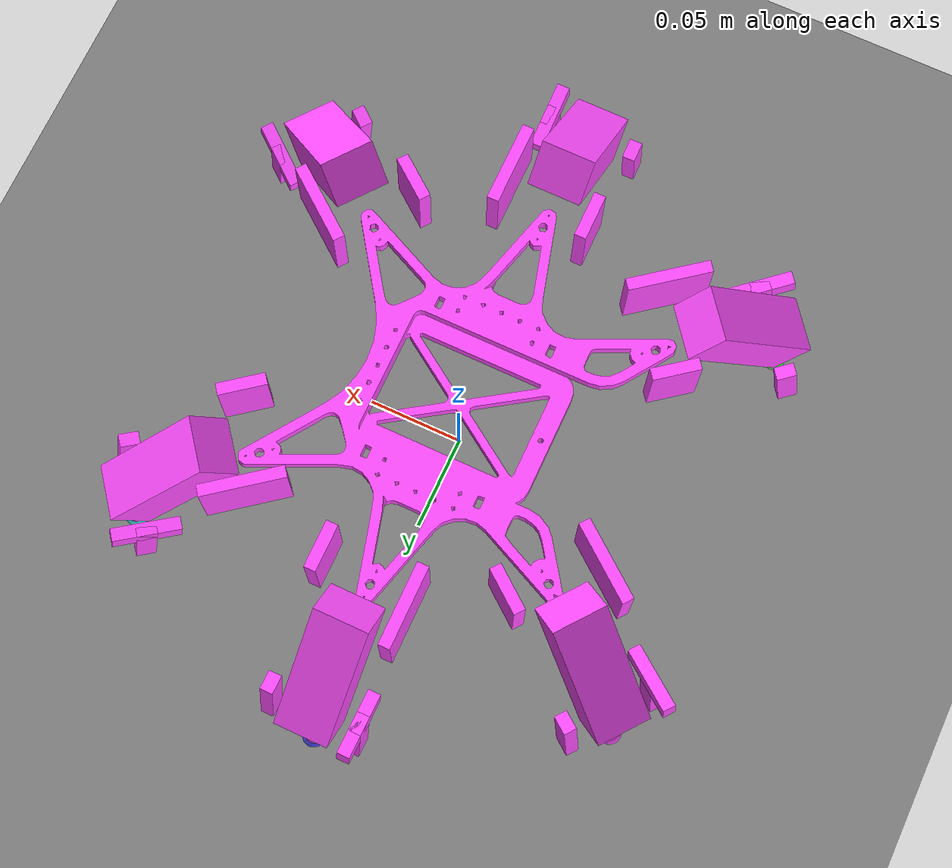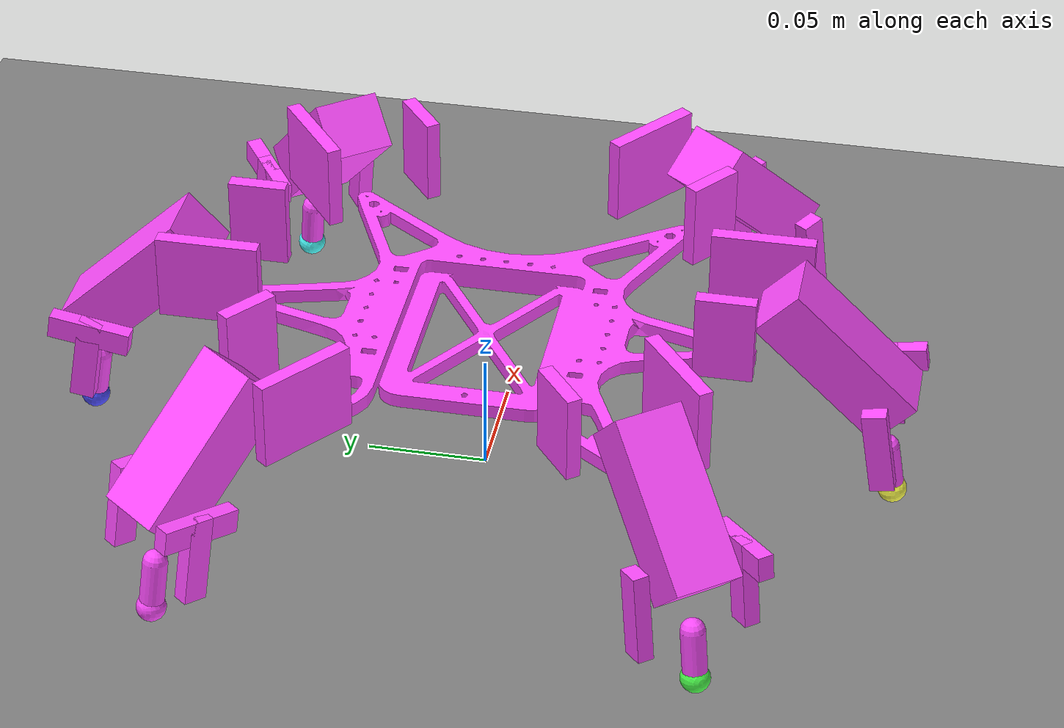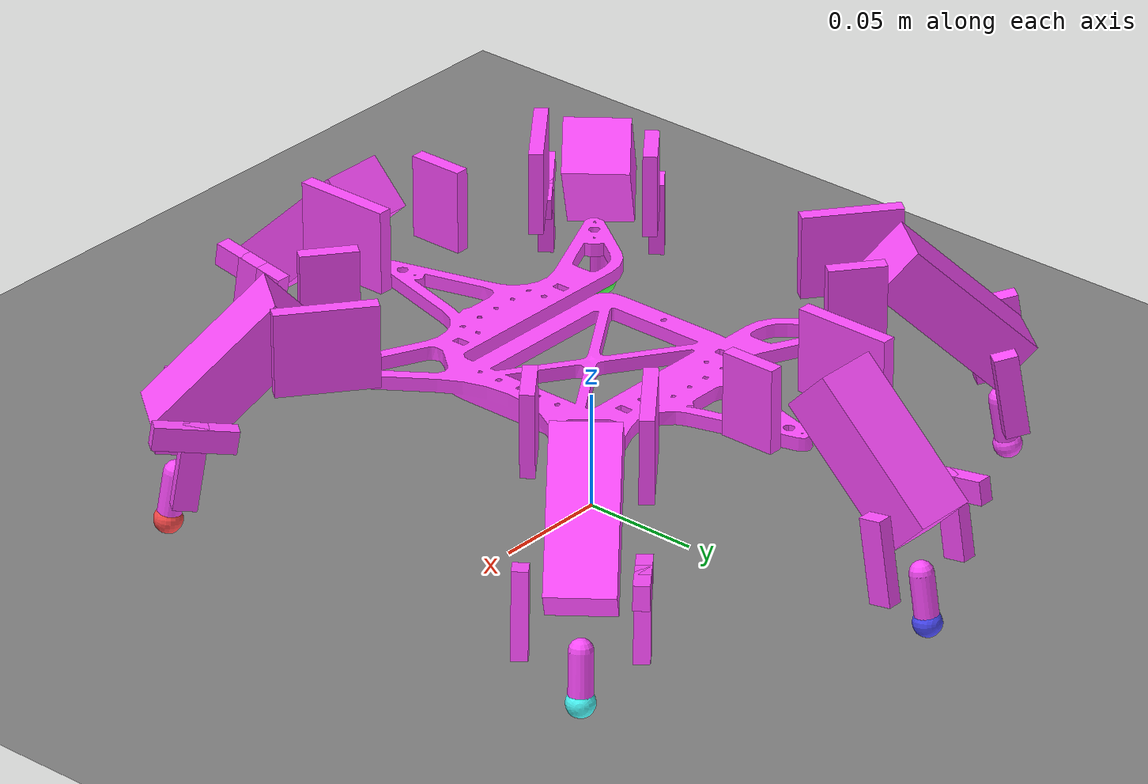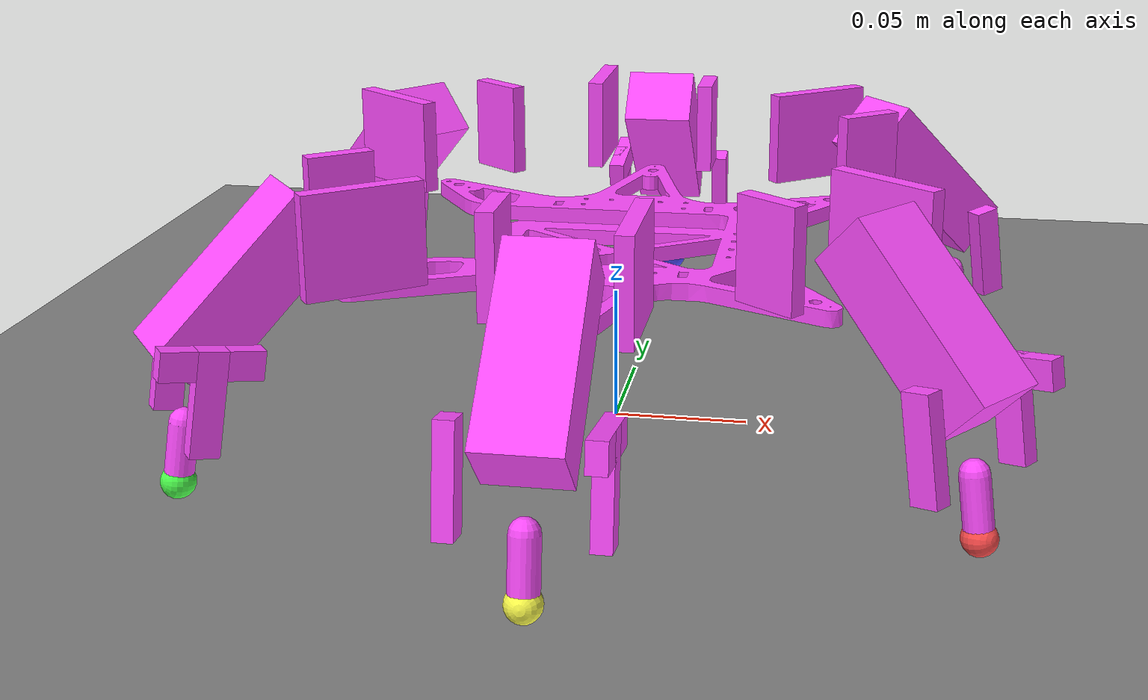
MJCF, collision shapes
<mujoco model="hexy-v2.2">
    <include file="scenes/scene.xml"/>
    <include file="assets/dep-v2.2.xml"/>
    <compiler meshdir="meshes/"/>
    <worldbody>
        <body name="hexy_frame" pos="0 0 0">
            <camera name="track" mode="trackcom" pos="0 -1 0.25" xyaxes="1 0 0 0 0 1"/>
            <joint name="Tx" pos="0 0 0" axis="1 0 0" limited="true" type="slide" range="-10 100"/>
            <joint name="Ty" pos="0 0 0" axis="0 1 0" limited="true" type="slide" range="-10 100"/>
            <joint name="Tz" pos="0 0 0" axis="0 0 1" limited="true" type="slide" range="-10 100"/>
            <joint name="Rx" pos="0 0 0" axis="1 0 0" limited="true" range="-20 20"/>
            <joint name="Ry" pos="0 0 0" axis="0 1 0" limited="true" range="-20 20"/>
            <joint name="Rz" pos="0 0 0" axis="0 0 1" limited="true" range="-20 20"/>
            <include file="assets/chain-v2.2.xml"/>
        </body>
    </worldbody>
</mujoco>

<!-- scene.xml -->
<mujocoinclude>
  <asset>
    <texture name="texplane" type="2d" builtin="checker" rgb1="1 1 1" rgb2="0 0 0" width="512" height="512"/>
    <material name="MatPlane" reflectance="0" texture="texplane" texrepeat="1 1" texuniform="true"/>
  </asset>
  <worldbody>
    <geom name="floor" pos="0 0 0" size="30 5 .1" conaffinity="1" contype="1" type="plane" material="MatPlane" condim="4"/>
    <site name="xaxis" pos=".5 0 0" size=".005 .5" type="capsule" rgba="1 0 0 .25" euler="0 1.57 0" group="3"/>
    <site name="yaxis" pos="0 .5 0" size=".005 .5" type="capsule" rgba="0 1 0 .25" euler="1.57 0 0" group="3"/>
  </worldbody>
</mujocoinclude>

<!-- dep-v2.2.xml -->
<mujocoinclude>
    <compiler angle="radian"/>
    <!--option timestep="0.002"/-->
    <option timestep="0.004"/>
    <size njmax="2000" nconmax="500"/>
    <default>
        <default class="hexy">
            <joint limited="true" range="-1.5 1.5" damping="0.1" armature="0.001"/>
            <geom contype="1" conaffinity="1" condim="4" group="1" margin="0.001"/>
            <position ctrllimited="true" ctrlrange="-1.5 1.5" forcelimited="true" forcerange="-0.5 0.5" kp="1" gear="1"/>
            <default class="belly">
                <geom contype="0" conaffinity="0" group="1" type="mesh" rgba="1 1 1 1" mass="0"/>
            </default>
            <default class="thigh">
                <geom mesh="Thigh" contype="0" conaffinity="0" group="1" type="mesh" rgba="0.3 0.3 1 1" mass="0"/>
            </default>
            <default class="shin">
                <joint range="-0.75 2.25"/>
                <position ctrlrange="-0.75 2.25"/>
                <geom mesh="Shin" contype="0" conaffinity="0" group="1" type="mesh" rgba="0.3 1 0.3 1" mass="0"/>
            </default>
            <default class="foot">
                <joint range="-2.1 0.9"/>
                <position ctrlrange="-2.1 0.9"/>
                <geom mesh="Foot" contype="0" conaffinity="0" group="1" type="mesh" rgba="1 0.3 0.3 1" mass="0"/>
            </default>
            <default class="collision">
                <geom contype="1" conaffinity="1" group="4" rgba="1 0.3 1 0.5"/>
            </default>
            <site pos="0.049 0 0" group="1" type="sphere" size="0.006"/>
        </default>
    </default>
    <asset>
        <mesh name="Bulk" file="main_body.STL"/>
        <mesh name="BulkCollision" file="base_link_2500_face.stl"/>
        <mesh name="Thigh" file="link1_1.STL"/>
        <mesh name="Shin" file="link1_2.STL"/>
        <mesh name="Foot" file="link1_3.STL"/>
    </asset>
    <actuator>
        <position class="hexy" name="FR1" joint="FR1"/>
        <position class="shin" name="FR2" joint="FR2"/>
        <position class="foot" name="FR3" joint="FR3"/>
        <position class="hexy" name="MR1" joint="MR1"/>
        <position class="shin" name="MR2" joint="MR2"/>
        <position class="foot" name="MR3" joint="MR3"/>
        <position class="hexy" name="BR1" joint="BR1"/>
        <position class="shin" name="BR2" joint="BR2"/>
        <position class="foot" name="BR3" joint="BR3"/>
        <position class="hexy" name="FL1" joint="FL1"/>
        <position class="shin" name="FL2" joint="FL2"/>
        <position class="foot" name="FL3" joint="FL3"/>
        <position class="hexy" name="ML1" joint="ML1"/>
        <position class="shin" name="ML2" joint="ML2"/>
        <position class="foot" name="ML3" joint="ML3"/>
        <position class="hexy" name="BL1" joint="BL1"/>
        <position class="shin" name="BL2" joint="BL2"/>
        <position class="foot" name="BL3" joint="BL3"/>
    </actuator>
</mujocoinclude>

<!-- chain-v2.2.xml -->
<mujocoinclude>
    <body childclass="hexy" name="Hexy" pos="0 0 0.06" euler="-1.570796 0 -1.570796">
        <!-- Torso 0.29131 gram -->
        <geom class="belly" name="Torso" mesh="Bulk"/>
        <geom class="collision" type="mesh" mesh="BulkCollision" euler="1.570796 1.570796 0"/>
        <inertial pos="0.038378 0.011283 -2.4509e-05" quat="1 -0.000159067 -3.52117e-06 -8.80146e-05" mass="0.39131" diaginertia="0.00058735 0.00035464 0.00024547" />
        <!-- Front Right Leg -->
        <body name="FrontRightThigh" pos="0.0133 0.076604 -0.064279" quat="0.67 -0.23 0.67 -0.23">
            <inertial pos="0.000650729 0.00390237 0.0206345" quat="0.565059 0.407617 0.353554 0.624144" mass="0.0328104" diaginertia="4.10825e-06 4.04383e-06 3.93464e-06" />
            <joint name="FR1" pos="0 0 0" axis="0 0 1"/>
            <geom class="thigh"/>
            <geom class="collision" type="box" pos="0.023 0 0.02" size="0.003 0.012 0.018"/>
            <geom class="collision" type="box" pos="-0.023 0.009 0.02" size="0.003 0.021 0.018"/>
            <body name="FrontRightShin" pos="0 0.026 0.02015" quat="0.4 1 0.4 1">
                <inertial pos="7.00279e-05 -0.0244376 -0.00118476" quat="0.707108 0.707106 0 0" mass="0.0331424" diaginertia="6.21248e-06 5.7647e-06 2.30821e-06" />
                <joint name="FR2" class="shin" pos="0 0 0" axis="0 0 1"/>
                <geom class="shin"/>
                <geom class="collision" type="box" pos="0 -0.0245 0" size="0.012 0.0345 0.014"/>
                <body name="FrontRightFoot" pos="0 -0.04887 0" quat="0.5 -0.5 1 -1">
                    <inertial pos="0.0170134 0.00029768 1.52199e-09" quat="3.18245e-06 0.707107 -3.68379e-07 0.707106" mass="0.0165654" diaginertia="1.76103e-06 1.37282e-06 1.01637e-06" />
                    <joint name="FR3" class="foot" pos="0 0 0" axis="0 1 0"/>
                    <geom class="foot"/>
                    <geom class="collision" type="box" pos="0.013 0.023 0" size="0.018 0.0033 0.005"/>
                    <geom class="collision" type="box" pos="0.013 -0.023 0" size="0.018 0.0033 0.005"/>
                    <geom class="collision" type="box" pos="0 0.023 0" size="0.005 0.0033 0.017"/>
                    <geom class="collision" euler="0 -1.571 0" type="capsule" pos="0.038 0 0" size="0.005 0.01"/>
                    <site name="FRfoot" rgba="1 0.3 0.3 1"/>
                </body>
            </body>
        </body>
        <!-- Middle Right Leg -->
        <body name="MiddleRightThigh" pos="0.0133 0 -0.1" quat="0.5 -0.5 0.5 -0.5">
            <inertial pos="0.000650726 0.00390238 0.0206345" quat="0.565059 0.407618 0.353555 0.624142" mass="0.0328105" diaginertia="4.10825e-06 4.04383e-06 3.93464e-06" />
            <joint name="MR1" pos="0 0 0" axis="0 0 1"/>
            <geom class="thigh"/>
            <geom class="collision" type="box" pos="0.023 0 0.02" size="0.003 0.012 0.018"/>
            <geom class="collision" type="box" pos="-0.023 0.009 0.02" size="0.003 0.021 0.018"/>
            <body name="MiddleRightShin" pos="0 0.026 0.02015" quat="0.4 1 0.4 1">
                <inertial pos="6.99965e-05 -0.0244375 -0.00118476" quat="0.707107 0.707107 -8.09775e-06 8.09775e-06" mass="0.0331424" diaginertia="6.21247e-06 5.7647e-06 2.30821e-06" />
                <joint name="MR2" class="shin" pos="0 0 0" axis="0 0 1"/>
                <geom class="shin"/>
                <geom class="collision" type="box" pos="0 -0.0245 0" size="0.012 0.0345 0.014"/>
                <body name="MiddleRightFoot" pos="0.00014 -0.04887 0" quat="0.5 -0.5 1 -1">
                    <inertial pos="0.0170134 0.00029772 -2.57158e-08" quat="4.56968e-06 0.707107 1.45044e-07 0.707107" mass="0.0165654" diaginertia="1.76103e-06 1.37282e-06 1.01637e-06" />
                    <joint name="MR3" class="foot" pos="0 0 0" axis="0 1 0"/>
                    <geom class="foot"/>
                    <geom class="collision" type="box" pos="0.013 0.023 0" size="0.018 0.0033 0.005"/>
                    <geom class="collision" type="box" pos="0.013 -0.023 0" size="0.018 0.0033 0.005"/>
                    <geom class="collision" type="box" pos="0 0.023 0" size="0.005 0.0033 0.017"/>
                    <geom class="collision" euler="0 -1.571 0" type="capsule" pos="0.038 0 0" size="0.005 0.01"/>
                    <site name="MRfoot" rgba="1 1 0.3 1"/>
                </body>
            </body>
        </body>
        <!-- Back Right Leg -->
        <body name="BackRightThigh" pos="0.0133 -0.0766044 -0.0642788" quat="0.23 -0.67 0.23 -0.67">
            <inertial pos="0.000650732 0.00390238 0.0206345" quat="0.56506 0.40762 0.353558 0.62414" mass="0.0328105" diaginertia="4.10825e-06 4.04383e-06 3.93464e-06" />
            <joint name="BR1" pos="0 0 0" axis="0 0 1"/>
            <geom class="thigh"/>
            <geom class="collision" type="box" pos="0.023 0 0.02" size="0.003 0.012 0.018"/>
            <geom class="collision" type="box" pos="-0.023 0.009 0.02" size="0.003 0.021 0.018"/>
            <body name="BackRightShin" pos="0 0.026 0.02015" quat="-1 0.4 -1 0.4">
                <inertial pos="-6.99677e-05 0.0244324 -0.00118475" quat="0.707108 0.707106 0 0" mass="0.0331424" diaginertia="6.21248e-06 5.7647e-06 2.30821e-06" />
                <joint name="BR2" class="shin" pos="0 0 0" axis="0 0 1"/>
                <geom class="shin" euler="0 0 -3.141593"/>
                <geom class="collision" type="box" pos="0 0.0245 0" size="0.012 0.0345 0.014"/>
                <body name="BackRightFoot" pos="-0.00014 0.04887 0" quat="1 -1 -0.5 0.5">
                    <inertial pos="0.0170134 0.000297742 -3.74929e-08" quat="5.09579e-06 0.707107 3.37696e-07 0.707106" mass="0.0165654" diaginertia="1.76103e-06 1.37282e-06 1.01637e-06" />
                    <joint name="BR3" class="foot" pos="0 0 0" axis="0 1 0"/>
                    <geom class="foot"/>
                    <geom class="collision" type="box" pos="0.013 0.023 0" size="0.018 0.0033 0.005"/>
                    <geom class="collision" type="box" pos="0.013 -0.023 0" size="0.018 0.0033 0.005"/>
                    <geom class="collision" type="box" pos="0 0.023 0" size="0.005 0.0033 0.017"/>
                    <geom class="collision" euler="0 -1.571 0" type="capsule" pos="0.038 0 0" size="0.005 0.01"/>
                    <site name="BRfoot" rgba="0.3 1 0.3 1"/>
                </body>
            </body>
        </body>
        <!-- Front Left Leg -->
        <body name="FrontLeftThigh" pos="0.0133 0.0766044 0.0642788" quat="0.67 0.23 0.67 0.23">
            <inertial pos="0.000650732 0.00390238 0.0206345" quat="0.56506 0.40762 0.353558 0.62414" mass="0.0328105" diaginertia="4.10825e-06 4.04383e-06 3.93464e-06" />
            <joint name="FL1" pos="0 0 0" axis="0 0 1"/>
            <geom class="thigh"/>
            <geom class="collision" type="box" pos="0.023 0 0.02" size="0.003 0.012 0.018"/>
            <geom class="collision" type="box" pos="-0.023 0.009 0.02" size="0.003 0.021 0.018"/>
            <body name="FrontLeftShin" pos="0 0.026 0.02015" quat="0.4 1 0.4 1">
                <inertial pos="6.99987e-05 -0.0244375 -0.00118475" quat="0.707107 0.707107 -8.15956e-06 8.15956e-06" mass="0.0331424" diaginertia="6.21248e-06 5.7647e-06 2.30821e-06" />
                <joint name="FL2" class="shin" pos="0 0 0" axis="0 0 1"/>
                <geom class="shin"/>
                <geom class="collision" type="box" pos="0 -0.0245 0" size="0.012 0.0345 0.014"/>
                <body name="FrontLeftFoot" pos="0.00014 -0.04887 0" quat="0.5 -0.5 1 -1">
                    <inertial pos="0.017013 0.00029773 -3.1875e-08" quat="4.82555e-06 0.707107 6.15082e-07 0.707106" mass="0.016565" diaginertia="1.761e-06 1.3728e-06 1.0164e-06" />
                    <joint name="FL3" class="foot" pos="0 0 0" axis="0 1 0"/>
                    <geom class="foot"/>
                    <geom class="collision" type="box" pos="0.013 0.023 0" size="0.018 0.0033 0.005"/>
                    <geom class="collision" type="box" pos="0.013 -0.023 0" size="0.018 0.0033 0.005"/>
                    <geom class="collision" type="box" pos="0 0.023 0" size="0.005 0.0033 0.017"/>
                    <geom class="collision" euler="0 -1.571 0" type="capsule" pos="0.038 0 0" size="0.005 0.01"/>
                    <site name="FLfoot" rgba="0.3 1 1 1"/>
                </body>
            </body>
        </body>
        <!-- Middle Left Leg -->
        <body name="MiddleLeftThigh" pos="0.0133 0 0.1" quat="0.5 0.5 0.5 0.5">
            <inertial pos="0.00065072 0.0039024 0.020635" quat="0.565132 0.407532 0.35351 0.624158" mass="0.03281" diaginertia="4.10826e-06 4.04379e-06 3.93464e-06" />
            <joint name="ML1" pos="0 0 0" axis="0 0 1"/>
            <geom class="thigh"/>
            <geom class="collision" type="box" pos="0.023 0 0.02" size="0.003 0.012 0.018"/>
            <geom class="collision" type="box" pos="-0.023 0.009 0.02" size="0.003 0.021 0.018"/>
            <body name="MiddleLeftShin" pos="0 0.026 0.02015" quat="0.4 1 0.4 1">
                <inertial pos="7.0023e-05 -0.024438 -0.0011848" quat="0.707107 0.707107 0 0" mass="0.033142" diaginertia="6.2125e-06 5.7647e-06 2.3082e-06" />
                <joint name="ML2" class="shin" pos="0 0 0" axis="0 0 1"/>
                <geom class="shin"/>
                <geom class="collision" type="box" pos="0 -0.0245 0" size="0.012 0.0345 0.014"/>
                <body name="MiddleLeftFoot" pos="0.00014 -0.04887 0" quat="0.5 -0.5 1 -1">
                    <inertial pos="0.017013 0.00029772 -1.3239e-08" quat="3.94529e-06 0.707107 -1.79691e-07 0.707107" mass="0.016565" diaginertia="1.761e-06 1.3728e-06 1.0164e-06" />
                    <joint name="ML3" class="foot" pos="0 0 0" axis="0 1 0"/>
                    <geom class="foot"/>
                    <geom class="collision" type="box" pos="0.013 0.023 0" size="0.018 0.0033 0.005"/>
                    <geom class="collision" type="box" pos="0.013 -0.023 0" size="0.018 0.0033 0.005"/>
                    <geom class="collision" type="box" pos="0 0.023 0" size="0.005 0.0033 0.017"/>
                    <geom class="collision" euler="0 -1.571 0" type="capsule" pos="0.038 0 0" size="0.005 0.01"/>
                    <site name="MLfoot" rgba="0.3 0.3 1 1"/>
                </body>
            </body>
        </body>
        <!-- Back Left Leg -->
        <body name="BackLeftThigh" pos="0.0133 -0.0766044 0.0642788" quat="0.23 0.67 0.23 0.67">
            <inertial pos="0.000650729 0.00390237 0.0206345" quat="0.565059 0.407617 0.353554 0.624144" mass="0.0328104" diaginertia="4.10825e-06 4.04383e-06 3.93464e-06" />
            <joint name="BL1" pos="0 0 0" axis="0 0 1"/>
            <geom class="thigh"/>
            <geom class="collision" type="box" pos="0.023 0 0.02" size="0.003 0.012 0.018"/>
            <geom class="collision" type="box" pos="-0.023 0.009 0.02" size="0.003 0.021 0.018"/>
            <body name="BackLeftShin" pos="0 0.026 0.02015" quat="0.4 1 0.4 1">
                <inertial pos="7.00277e-05 -0.0244376 -0.00118476" quat="0.707108 0.707106 0 0" mass="0.0331424" diaginertia="6.21248e-06 5.7647e-06 2.30821e-06" />
                <joint name="BL2" class="shin" pos="0 0 0" axis="0 0 1"/>
                <geom class="shin"/>
                <geom class="collision" type="box" pos="0 -0.0245 0" size="0.012 0.0345 0.014"/>
                <body name="BackLeftFoot" pos="0.00014 -0.04887 0" quat="0.5 -0.5 1 -1">
                    <inertial pos="0.0170134 0.000297681 9.41423e-10" quat="3.20918e-06 0.707107 -3.75724e-07 0.707106" mass="0.0165654" diaginertia="1.76103e-06 1.37282e-06 1.01637e-06" />
                    <joint name="BL3" class="foot" pos="0 0 0" axis="0 1 0"/>
                    <geom class="foot"/>
                    <geom class="collision" type="box" pos="0.013 0.023 0" size="0.018 0.0033 0.005"/>
                    <geom class="collision" type="box" pos="0.013 -0.023 0" size="0.018 0.0033 0.005"/>
                    <geom class="collision" type="box" pos="0 0.023 0" size="0.005 0.0033 0.017"/>
                    <geom class="collision" euler="0 -1.571 0" type="capsule" pos="0.038 0 0" size="0.005 0.01"/>
                    <site name="BLfoot" rgba="1 0.3 1 1"/>
                </body>
            </body>
        </body>
    </body>
</mujocoinclude>
